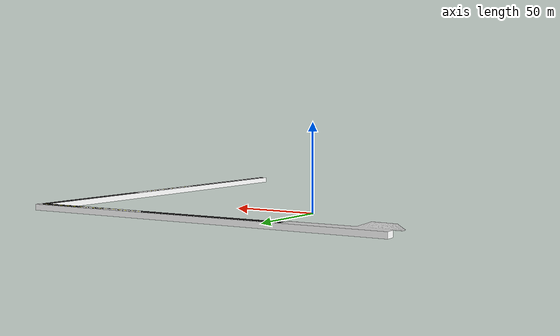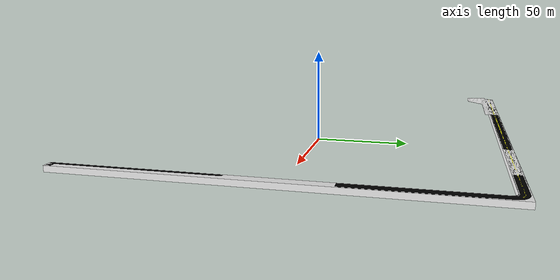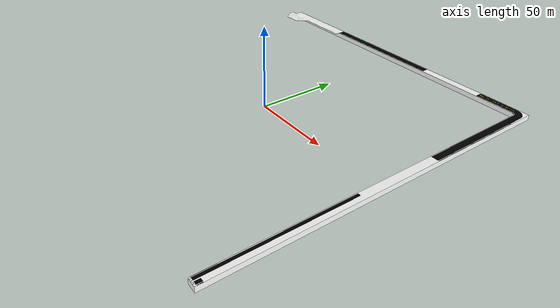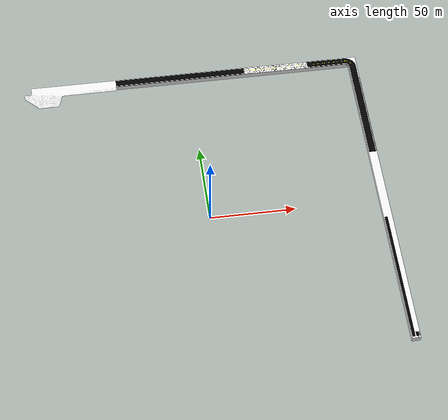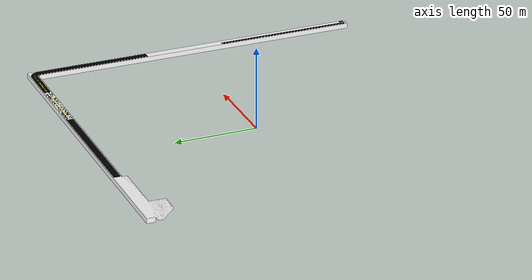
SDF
<?xml version="1.0" ?>
<sdf version="1.4">
  <model name="nctu_road">
    <static>true</static>
    <link name="walls">
      <collision name="collision">
        <geometry>
          <mesh>
            <uri>model://nctu_road/meshes/con.dae</uri>
          </mesh>
        </geometry>
      </collision>
      <visual name="visual">
        <geometry>
          <mesh>
            <uri>model://nctu_road/meshes/con.dae</uri>
          </mesh>
        </geometry>
        <cast_shadows>false</cast_shadows>
      </visual>
    </link>
  </model>
</sdf>
